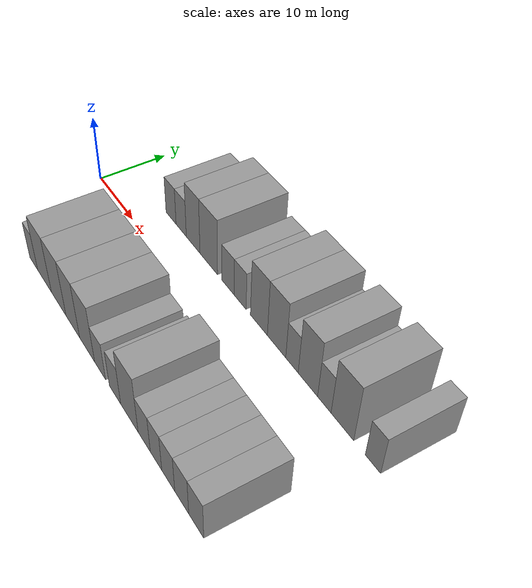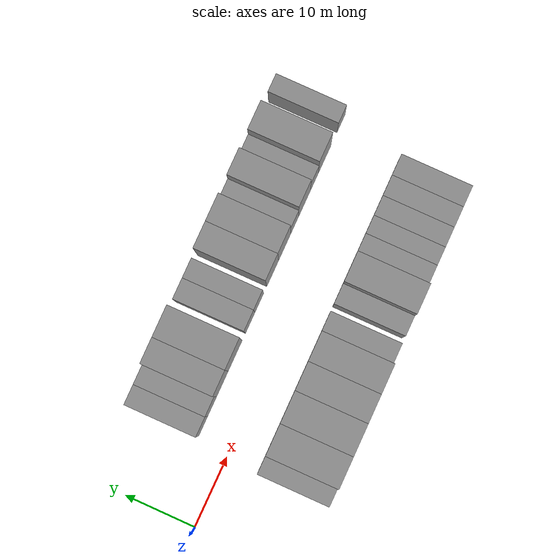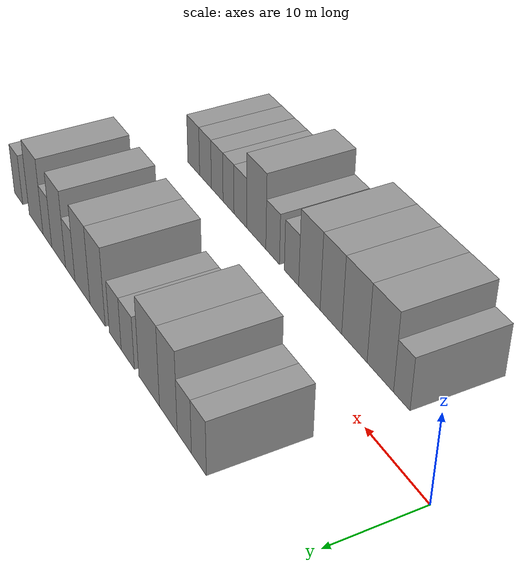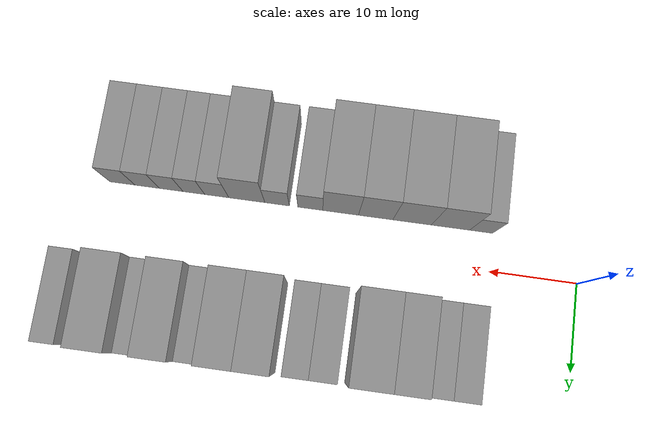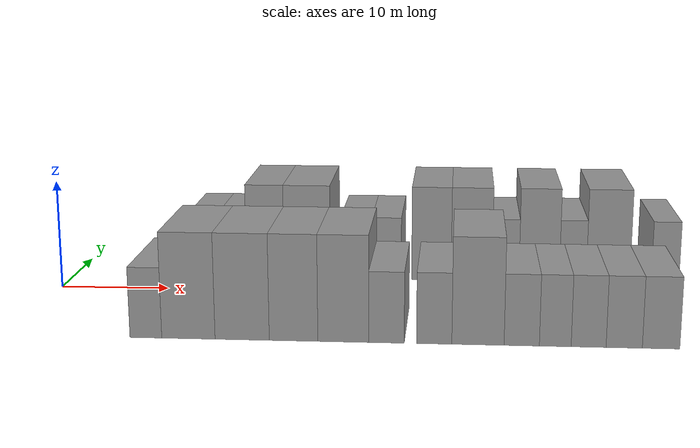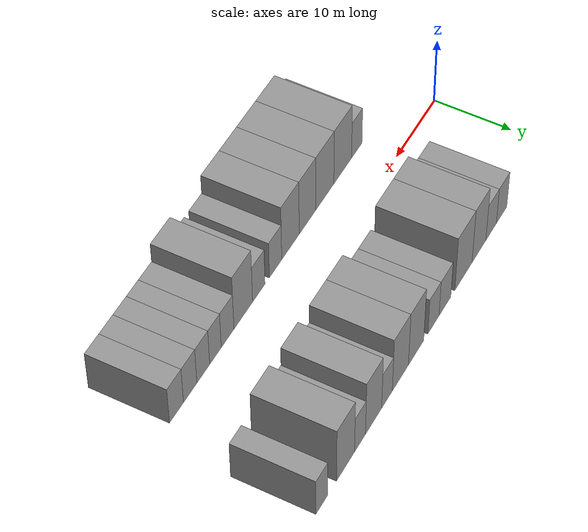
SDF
<sdf version="1.6">
 <world name="default">
  <model name="building_1">
   <static>1</static>
   <pose>12.4131 9.5000 0 0.000000 0.000000 1.570796</pose>
   <link name="link">
    <pose>0 0 3.00 0 0 0</pose>
    <collision name="collision"><geometry><box><size>10.0000 2.8262 6.0000</size></box></geometry></collision>
    <visual name="visual">
     <cast_shadows>0</cast_shadows>
     <geometry><box><size>10.0000 2.8262 6.0000</size></box></geometry>
     <material>
      <script>
       <uri>model://grey_wall/materials/scripts</uri>
       <uri>model://grey_wall/materials/textures</uri>
       <name>vrc/grey_wall</name>
      </script>
     </material>
    </visual>
   </link>
  </model>
  <model name="building_2">
   <static>1</static>
   <pose>15.2293 9.5000 0 0.000000 0.000000 1.570796</pose>
   <link name="link">
    <pose>0 0 3.00 0 0 0</pose>
    <collision name="collision"><geometry><box><size>10.0000 2.8062 6.0000</size></box></geometry></collision>
    <visual name="visual">
     <cast_shadows>0</cast_shadows>
     <geometry><box><size>10.0000 2.8062 6.0000</size></box></geometry>
     <material>
      <script>
       <uri>model://grey_wall/materials/scripts</uri>
       <uri>model://grey_wall/materials/textures</uri>
       <name>vrc/grey_wall</name>
      </script>
     </material>
    </visual>
   </link>
  </model>
  <model name="building_3">
   <static>1</static>
   <pose>18.4482 9.5000 0 0.000000 0.000000 1.570796</pose>
   <link name="link">
    <pose>0 0 4.50 0 0 0</pose>
    <collision name="collision"><geometry><box><size>10.0000 3.6314 9.0000</size></box></geometry></collision>
    <visual name="visual">
     <cast_shadows>0</cast_shadows>
     <geometry><box><size>10.0000 3.6314 9.0000</size></box></geometry>
     <material>
      <script>
       <uri>model://grey_wall/materials/scripts</uri>
       <uri>model://grey_wall/materials/textures</uri>
       <name>vrc/grey_wall</name>
      </script>
     </material>
    </visual>
   </link>
  </model>
  <model name="building_4">
   <static>1</static>
   <pose>22.4896 9.5000 0 0.000000 0.000000 1.570796</pose>
   <link name="link">
    <pose>0 0 4.50 0 0 0</pose>
    <collision name="collision"><geometry><box><size>10.0000 4.4515 9.0000</size></box></geometry></collision>
    <visual name="visual">
     <cast_shadows>0</cast_shadows>
     <geometry><box><size>10.0000 4.4515 9.0000</size></box></geometry>
     <material>
      <script>
       <uri>model://grey_wall/materials/scripts</uri>
       <uri>model://grey_wall/materials/textures</uri>
       <name>vrc/grey_wall</name>
      </script>
     </material>
    </visual>
   </link>
  </model>
  <model name="building_5">
   <static>1</static>
   <pose>27.2118 9.5000 0 0.000000 0.000000 1.570796</pose>
   <link name="link">
    <pose>0 0 3.00 0 0 0</pose>
    <collision name="collision"><geometry><box><size>10.0000 2.9929 6.0000</size></box></geometry></collision>
    <visual name="visual">
     <cast_shadows>0</cast_shadows>
     <geometry><box><size>10.0000 2.9929 6.0000</size></box></geometry>
     <material>
      <script>
       <uri>model://grey_wall/materials/scripts</uri>
       <uri>model://grey_wall/materials/textures</uri>
       <name>vrc/grey_wall</name>
      </script>
     </material>
    </visual>
   </link>
  </model>
  <model name="building_6">
   <static>1</static>
   <pose>30.1102 9.5000 0 0.000000 0.000000 1.570796</pose>
   <link name="link">
    <pose>0 0 3.00 0 0 0</pose>
    <collision name="collision"><geometry><box><size>10.0000 2.8040 6.0000</size></box></geometry></collision>
    <visual name="visual">
     <cast_shadows>0</cast_shadows>
     <geometry><box><size>10.0000 2.8040 6.0000</size></box></geometry>
     <material>
      <script>
       <uri>model://grey_wall/materials/scripts</uri>
       <uri>model://grey_wall/materials/textures</uri>
       <name>vrc/grey_wall</name>
      </script>
     </material>
    </visual>
   </link>
  </model>
  <model name="building_7">
   <static>1</static>
   <pose>34.3932 9.5000 0 0.000000 0.000000 1.570796</pose>
   <link name="link">
    <pose>0 0 4.50 0 0 0</pose>
    <collision name="collision"><geometry><box><size>10.0000 3.7620 9.0000</size></box></geometry></collision>
    <visual name="visual">
     <cast_shadows>0</cast_shadows>
     <geometry><box><size>10.0000 3.7620 9.0000</size></box></geometry>
     <material>
      <script>
       <uri>model://grey_wall/materials/scripts</uri>
       <uri>model://grey_wall/materials/textures</uri>
       <name>vrc/grey_wall</name>
      </script>
     </material>
    </visual>
   </link>
  </model>
  <model name="building_8">
   <static>1</static>
   <pose>38.2200 9.5000 0 0.000000 0.000000 1.570796</pose>
   <link name="link">
    <pose>0 0 4.50 0 0 0</pose>
    <collision name="collision"><geometry><box><size>10.0000 3.8916 9.0000</size></box></geometry></collision>
    <visual name="visual">
     <cast_shadows>0</cast_shadows>
     <geometry><box><size>10.0000 3.8916 9.0000</size></box></geometry>
     <material>
      <script>
       <uri>model://grey_wall/materials/scripts</uri>
       <uri>model://grey_wall/materials/textures</uri>
       <name>vrc/grey_wall</name>
      </script>
     </material>
    </visual>
   </link>
  </model>
  <model name="building_9">
   <static>1</static>
   <pose>41.4322 9.5000 0 0.000000 0.000000 1.570796</pose>
   <link name="link">
    <pose>0 0 3.00 0 0 0</pose>
    <collision name="collision"><geometry><box><size>10.0000 2.5330 6.0000</size></box></geometry></collision>
    <visual name="visual">
     <cast_shadows>0</cast_shadows>
     <geometry><box><size>10.0000 2.5330 6.0000</size></box></geometry>
     <material>
      <script>
       <uri>model://grey_wall/materials/scripts</uri>
       <uri>model://grey_wall/materials/textures</uri>
       <name>vrc/grey_wall</name>
      </script>
     </material>
    </visual>
   </link>
  </model>
  <model name="building_10">
   <static>1</static>
   <pose>44.6003 9.5000 0 0.000000 0.000000 1.570796</pose>
   <link name="link">
    <pose>0 0 4.50 0 0 0</pose>
    <collision name="collision"><geometry><box><size>10.0000 3.8032 9.0000</size></box></geometry></collision>
    <visual name="visual">
     <cast_shadows>0</cast_shadows>
     <geometry><box><size>10.0000 3.8032 9.0000</size></box></geometry>
     <material>
      <script>
       <uri>model://grey_wall/materials/scripts</uri>
       <uri>model://grey_wall/materials/textures</uri>
       <name>vrc/grey_wall</name>
      </script>
     </material>
    </visual>
   </link>
  </model>
  <model name="building_11">
   <static>1</static>
   <pose>47.7659 9.5000 0 0.000000 0.000000 1.570796</pose>
   <link name="link">
    <pose>0 0 3.00 0 0 0</pose>
    <collision name="collision"><geometry><box><size>10.0000 2.5279 6.0000</size></box></geometry></collision>
    <visual name="visual">
     <cast_shadows>0</cast_shadows>
     <geometry><box><size>10.0000 2.5279 6.0000</size></box></geometry>
     <material>
      <script>
       <uri>model://grey_wall/materials/scripts</uri>
       <uri>model://grey_wall/materials/textures</uri>
       <name>vrc/grey_wall</name>
      </script>
     </material>
    </visual>
   </link>
  </model>
  <model name="building_12">
   <static>1</static>
   <pose>51.0742 9.5000 0 0.000000 0.000000 1.570796</pose>
   <link name="link">
    <pose>0 0 4.50 0 0 0</pose>
    <collision name="collision"><geometry><box><size>10.0000 4.0886 9.0000</size></box></geometry></collision>
    <visual name="visual">
     <cast_shadows>0</cast_shadows>
     <geometry><box><size>10.0000 4.0886 9.0000</size></box></geometry>
     <material>
      <script>
       <uri>model://grey_wall/materials/scripts</uri>
       <uri>model://grey_wall/materials/textures</uri>
       <name>vrc/grey_wall</name>
      </script>
     </material>
    </visual>
   </link>
  </model>
  <model name="building_13">
   <static>1</static>
   <pose>56.4108 9.5000 0 0.000000 0.000000 1.570796</pose>
   <link name="link">
    <pose>0 0 3.00 0 0 0</pose>
    <collision name="collision"><geometry><box><size>10.0000 2.5846 6.0000</size></box></geometry></collision>
    <visual name="visual">
     <cast_shadows>0</cast_shadows>
     <geometry><box><size>10.0000 2.5846 6.0000</size></box></geometry>
     <material>
      <script>
       <uri>model://grey_wall/materials/scripts</uri>
       <uri>model://grey_wall/materials/textures</uri>
       <name>vrc/grey_wall</name>
      </script>
     </material>
    </visual>
   </link>
  </model>
  <model name="building_53">
   <static>1</static>
   <pose>11.3274 -9.5000 0 0.000000 0.000000 1.570796</pose>
   <link name="link">
    <pose>0 0 3.00 0 0 0</pose>
    <collision name="collision"><geometry><box><size>10.0000 2.6547 6.0000</size></box></geometry></collision>
    <visual name="visual">
     <cast_shadows>0</cast_shadows>
     <geometry><box><size>10.0000 2.6547 6.0000</size></box></geometry>
     <material>
      <script>
       <uri>model://grey_wall/materials/scripts</uri>
       <uri>model://grey_wall/materials/textures</uri>
       <name>vrc/grey_wall</name>
      </script>
     </material>
    </visual>
   </link>
  </model>
  <model name="building_54">
   <static>1</static>
   <pose>14.8735 -9.5000 0 0.000000 0.000000 1.570796</pose>
   <link name="link">
    <pose>0 0 4.50 0 0 0</pose>
    <collision name="collision"><geometry><box><size>10.0000 4.4376 9.0000</size></box></geometry></collision>
    <visual name="visual">
     <cast_shadows>0</cast_shadows>
     <geometry><box><size>10.0000 4.4376 9.0000</size></box></geometry>
     <material>
      <script>
       <uri>model://grey_wall/materials/scripts</uri>
       <uri>model://grey_wall/materials/textures</uri>
       <name>vrc/grey_wall</name>
      </script>
     </material>
    </visual>
   </link>
  </model>
  <model name="building_55">
   <static>1</static>
   <pose>19.3356 -9.5000 0 0.000000 0.000000 1.570796</pose>
   <link name="link">
    <pose>0 0 4.50 0 0 0</pose>
    <collision name="collision"><geometry><box><size>10.0000 4.4865 9.0000</size></box></geometry></collision>
    <visual name="visual">
     <cast_shadows>0</cast_shadows>
     <geometry><box><size>10.0000 4.4865 9.0000</size></box></geometry>
     <material>
      <script>
       <uri>model://grey_wall/materials/scripts</uri>
       <uri>model://grey_wall/materials/textures</uri>
       <name>vrc/grey_wall</name>
      </script>
     </material>
    </visual>
   </link>
  </model>
  <model name="building_56">
   <static>1</static>
   <pose>23.5786 -9.5000 0 0.000000 0.000000 1.570796</pose>
   <link name="link">
    <pose>0 0 4.50 0 0 0</pose>
    <collision name="collision"><geometry><box><size>10.0000 3.9994 9.0000</size></box></geometry></collision>
    <visual name="visual">
     <cast_shadows>0</cast_shadows>
     <geometry><box><size>10.0000 3.9994 9.0000</size></box></geometry>
     <material>
      <script>
       <uri>model://grey_wall/materials/scripts</uri>
       <uri>model://grey_wall/materials/textures</uri>
       <name>vrc/grey_wall</name>
      </script>
     </material>
    </visual>
   </link>
  </model>
  <model name="building_57">
   <static>1</static>
   <pose>27.6593 -9.5000 0 0.000000 0.000000 1.570796</pose>
   <link name="link">
    <pose>0 0 4.50 0 0 0</pose>
    <collision name="collision"><geometry><box><size>10.0000 4.1622 9.0000</size></box></geometry></collision>
    <visual name="visual">
     <cast_shadows>0</cast_shadows>
     <geometry><box><size>10.0000 4.1622 9.0000</size></box></geometry>
     <material>
      <script>
       <uri>model://grey_wall/materials/scripts</uri>
       <uri>model://grey_wall/materials/textures</uri>
       <name>vrc/grey_wall</name>
      </script>
     </material>
    </visual>
   </link>
  </model>
  <model name="building_58">
   <static>1</static>
   <pose>31.1941 -9.5000 0 0.000000 0.000000 1.570796</pose>
   <link name="link">
    <pose>0 0 3.00 0 0 0</pose>
    <collision name="collision"><geometry><box><size>10.0000 2.9074 6.0000</size></box></geometry></collision>
    <visual name="visual">
     <cast_shadows>0</cast_shadows>
     <geometry><box><size>10.0000 2.9074 6.0000</size></box></geometry>
     <material>
      <script>
       <uri>model://grey_wall/materials/scripts</uri>
       <uri>model://grey_wall/materials/textures</uri>
       <name>vrc/grey_wall</name>
      </script>
     </material>
    </visual>
   </link>
  </model>
  <model name="building_59">
   <static>1</static>
   <pose>35.0804 -9.5000 0 0.000000 0.000000 1.570796</pose>
   <link name="link">
    <pose>0 0 3.00 0 0 0</pose>
    <collision name="collision"><geometry><box><size>10.0000 2.8652 6.0000</size></box></geometry></collision>
    <visual name="visual">
     <cast_shadows>0</cast_shadows>
     <geometry><box><size>10.0000 2.8652 6.0000</size></box></geometry>
     <material>
      <script>
       <uri>model://grey_wall/materials/scripts</uri>
       <uri>model://grey_wall/materials/textures</uri>
       <name>vrc/grey_wall</name>
      </script>
     </material>
    </visual>
   </link>
  </model>
  <model name="building_60">
   <static>1</static>
   <pose>38.6266 -9.5000 0 0.000000 0.000000 1.570796</pose>
   <link name="link">
    <pose>0 0 4.50 0 0 0</pose>
    <collision name="collision"><geometry><box><size>10.0000 4.2273 9.0000</size></box></geometry></collision>
    <visual name="visual">
     <cast_shadows>0</cast_shadows>
     <geometry><box><size>10.0000 4.2273 9.0000</size></box></geometry>
     <material>
      <script>
       <uri>model://grey_wall/materials/scripts</uri>
       <uri>model://grey_wall/materials/textures</uri>
       <name>vrc/grey_wall</name>
      </script>
     </material>
    </visual>
   </link>
  </model>
  <model name="building_61">
   <static>1</static>
   <pose>42.1610 -9.5000 0 0.000000 0.000000 1.570796</pose>
   <link name="link">
    <pose>0 0 3.00 0 0 0</pose>
    <collision name="collision"><geometry><box><size>10.0000 2.8416 6.0000</size></box></geometry></collision>
    <visual name="visual">
     <cast_shadows>0</cast_shadows>
     <geometry><box><size>10.0000 2.8416 6.0000</size></box></geometry>
     <material>
      <script>
       <uri>model://grey_wall/materials/scripts</uri>
       <uri>model://grey_wall/materials/textures</uri>
       <name>vrc/grey_wall</name>
      </script>
     </material>
    </visual>
   </link>
  </model>
  <model name="building_62">
   <static>1</static>
   <pose>44.8583 -9.5000 0 0.000000 0.000000 1.570796</pose>
   <link name="link">
    <pose>0 0 3.00 0 0 0</pose>
    <collision name="collision"><geometry><box><size>10.0000 2.5530 6.0000</size></box></geometry></collision>
    <visual name="visual">
     <cast_shadows>0</cast_shadows>
     <geometry><box><size>10.0000 2.5530 6.0000</size></box></geometry>
     <material>
      <script>
       <uri>model://grey_wall/materials/scripts</uri>
       <uri>model://grey_wall/materials/textures</uri>
       <name>vrc/grey_wall</name>
      </script>
     </material>
    </visual>
   </link>
  </model>
  <model name="building_63">
   <static>1</static>
   <pose>47.5326 -9.5000 0 0.000000 0.000000 1.570796</pose>
   <link name="link">
    <pose>0 0 3.00 0 0 0</pose>
    <collision name="collision"><geometry><box><size>10.0000 2.7956 6.0000</size></box></geometry></collision>
    <visual name="visual">
     <cast_shadows>0</cast_shadows>
     <geometry><box><size>10.0000 2.7956 6.0000</size></box></geometry>
     <material>
      <script>
       <uri>model://grey_wall/materials/scripts</uri>
       <uri>model://grey_wall/materials/textures</uri>
       <name>vrc/grey_wall</name>
      </script>
     </material>
    </visual>
   </link>
  </model>
  <model name="building_64">
   <static>1</static>
   <pose>50.3752 -9.5000 0 0.000000 0.000000 1.570796</pose>
   <link name="link">
    <pose>0 0 3.00 0 0 0</pose>
    <collision name="collision"><geometry><box><size>10.0000 2.8894 6.0000</size></box></geometry></collision>
    <visual name="visual">
     <cast_shadows>0</cast_shadows>
     <geometry><box><size>10.0000 2.8894 6.0000</size></box></geometry>
     <material>
      <script>
       <uri>model://grey_wall/materials/scripts</uri>
       <uri>model://grey_wall/materials/textures</uri>
       <name>vrc/grey_wall</name>
      </script>
     </material>
    </visual>
   </link>
  </model>
  <model name="building_65">
   <static>1</static>
   <pose>53.3100 -9.5000 0 0.000000 0.000000 1.570796</pose>
   <link name="link">
    <pose>0 0 3.00 0 0 0</pose>
    <collision name="collision"><geometry><box><size>10.0000 2.9803 6.0000</size></box></geometry></collision>
    <visual name="visual">
     <cast_shadows>0</cast_shadows>
     <geometry><box><size>10.0000 2.9803 6.0000</size></box></geometry>
     <material>
      <script>
       <uri>model://grey_wall/materials/scripts</uri>
       <uri>model://grey_wall/materials/textures</uri>
       <name>vrc/grey_wall</name>
      </script>
     </material>
    </visual>
   </link>
  </model>
 </world>
</sdf>
